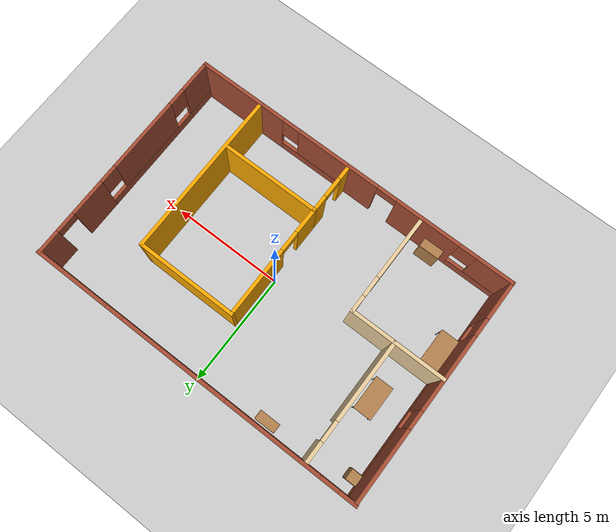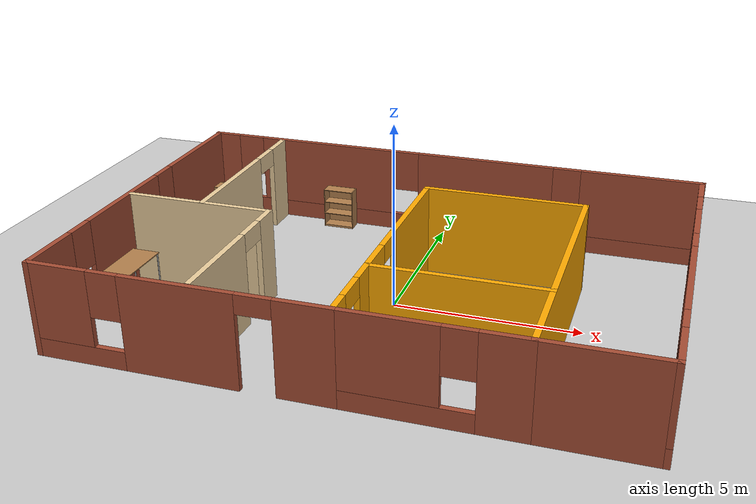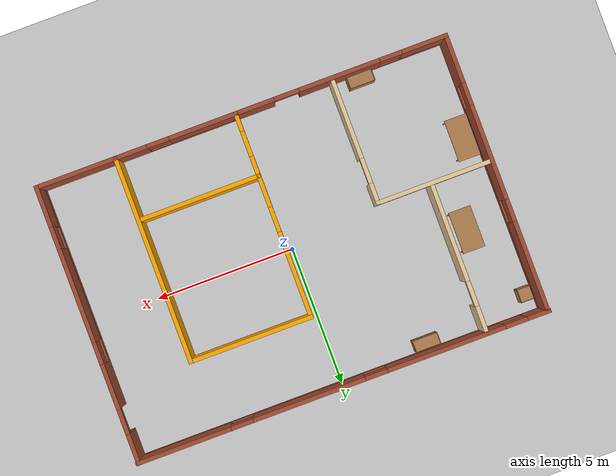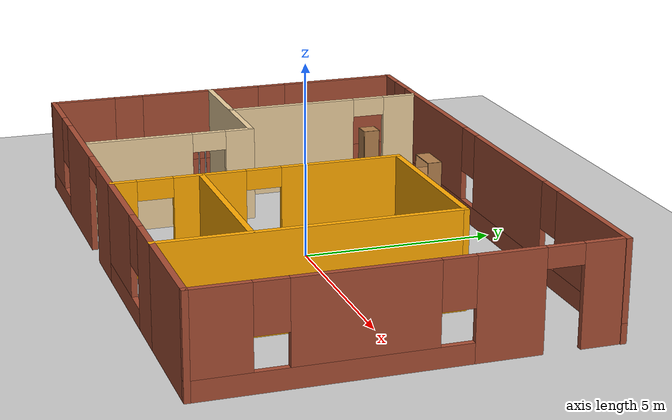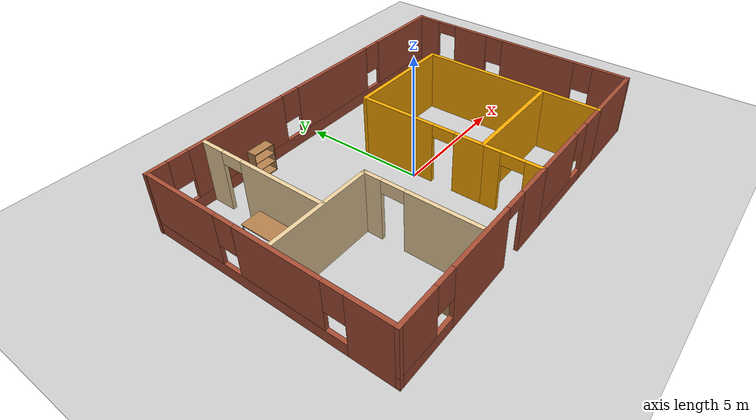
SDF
<sdf version="1.6">
 <world name="default">
  <model name="ground_plane">
   <static>1</static>
   <link name="ground_link">
    <collision name="collision">
     <geometry><plane><normal>0 0 1</normal><size>100 100</size></plane></geometry>
     <surface><friction><ode><mu>100</mu><mu2>50</mu2></ode></friction></surface>
    </collision>
    <visual name="visual">
     <cast_shadows>0</cast_shadows>
     <geometry><plane><normal>0 0 1</normal><size>100 100</size></plane></geometry>
     <material>
      <script><uri>file://media/materials/scripts/gazebo.material</uri><name>Gazebo/Grey</name></script>
     </material>
    </visual>
   </link>
  </model>
  <model name="Building">
   <link name="Wall_0">
    <pose>0 4.98061 0 0 -0 0</pose>
    <visual name="Wall_0_Visual_0">
     <pose>-7.08254 0 1.25 0 -0 0</pose>
     <geometry><box><size>0.834931 0.15 2.5</size></box></geometry>
     <material>
      <script><uri>file://media/materials/scripts/gazebo.material</uri><name>Gazebo/Bricks</name></script>
      <ambient>1 1 1 1</ambient>
     </material>
     <meta><layer>0</layer></meta>
    </visual>
    <collision name="Wall_0_Collision_0">
     <geometry><box><size>0.834931 0.15 2.5</size></box></geometry>
     <pose>-7.08254 0 1.25 0 -0 0</pose>
    </collision>
    <visual name="Wall_0_Visual_1">
     <pose>0.417465 0 0.25 0 -0 0</pose>
     <geometry><box><size>14.1651 0.15 0.5</size></box></geometry>
     <material>
      <script><uri>file://media/materials/scripts/gazebo.material</uri><name>Gazebo/Bricks</name></script>
      <ambient>1 1 1 1</ambient>
     </material>
     <meta><layer>0</layer></meta>
    </visual>
    <collision name="Wall_0_Collision_1">
     <geometry><box><size>14.1651 0.15 0.5</size></box></geometry>
     <pose>0.417465 0 0.25 0 -0 0</pose>
    </collision>
    <visual name="Wall_0_Visual_2">
     <pose>-3.73227 0 1.5 0 -0 0</pose>
     <geometry><box><size>4.2656 0.15 2</size></box></geometry>
     <material>
      <script><uri>file://media/materials/scripts/gazebo.material</uri><name>Gazebo/Bricks</name></script>
      <ambient>1 1 1 1</ambient>
     </material>
     <meta><layer>0</layer></meta>
    </visual>
    <collision name="Wall_0_Collision_2">
     <geometry><box><size>4.2656 0.15 2</size></box></geometry>
     <pose>-3.73227 0 1.5 0 -0 0</pose>
    </collision>
    <visual name="Wall_0_Visual_3">
     <pose>1.22925 0 1.5 0 -0 0</pose>
     <geometry><box><size>4.05743 0.15 2</size></box></geometry>
     <material>
      <script><uri>file://media/materials/scripts/gazebo.material</uri><name>Gazebo/Bricks</name></script>
      <ambient>1 1 1 1</ambient>
     </material>
     <meta><layer>0</layer></meta>
    </visual>
    <collision name="Wall_0_Collision_3">
     <geometry><box><size>4.05743 0.15 2</size></box></geometry>
     <pose>1.22925 0 1.5 0 -0 0</pose>
    </collision>
    <visual name="Wall_0_Visual_4">
     <pose>5.77898 0 1.5 0 -0 0</pose>
     <geometry><box><size>3.44204 0.15 2</size></box></geometry>
     <material>
      <script><uri>file://media/materials/scripts/gazebo.material</uri><name>Gazebo/Bricks</name></script>
      <ambient>1 1 1 1</ambient>
     </material>
     <meta><layer>0</layer></meta>
    </visual>
    <collision name="Wall_0_Collision_4">
     <geometry><box><size>3.44204 0.15 2</size></box></geometry>
     <pose>5.77898 0 1.5 0 -0 0</pose>
    </collision>
    <visual name="Wall_0_Visual_5">
     <pose>-6.26507 0 1.9 0 -0 0</pose>
     <geometry><box><size>0.8 0.15 1.2</size></box></geometry>
     <material>
      <script><uri>file://media/materials/scripts/gazebo.material</uri><name>Gazebo/Bricks</name></script>
      <ambient>1 1 1 1</ambient>
     </material>
     <meta><layer>0</layer></meta>
    </visual>
    <collision name="Wall_0_Collision_5">
     <geometry><box><size>0.8 0.15 1.2</size></box></geometry>
     <pose>-6.26507 0 1.9 0 -0 0</pose>
    </collision>
    <visual name="Wall_0_Visual_6">
     <pose>-1.19947 0 1.9 0 -0 0</pose>
     <geometry><box><size>0.8 0.15 1.2</size></box></geometry>
     <material>
      <script><uri>file://media/materials/scripts/gazebo.material</uri><name>Gazebo/Bricks</name></script>
      <ambient>1 1 1 1</ambient>
     </material>
     <meta><layer>0</layer></meta>
    </visual>
    <collision name="Wall_0_Collision_6">
     <geometry><box><size>0.8 0.15 1.2</size></box></geometry>
     <pose>-1.19947 0 1.9 0 -0 0</pose>
    </collision>
    <visual name="Wall_0_Visual_7">
     <pose>3.65796 0 1.9 0 -0 0</pose>
     <geometry><box><size>0.8 0.15 1.2</size></box></geometry>
     <material>
      <script><uri>file://media/materials/scripts/gazebo.material</uri><name>Gazebo/Bricks</name></script>
      <ambient>1 1 1 1</ambient>
     </material>
     <meta><layer>0</layer></meta>
    </visual>
    <collision name="Wall_0_Collision_7">
     <geometry><box><size>0.8 0.15 1.2</size></box></geometry>
     <pose>3.65796 0 1.9 0 -0 0</pose>
    </collision>
   </link>
   <link name="Wall_11">
    <pose>2.37687 -4.98061 0 0 -0 3.14159</pose>
    <visual name="Wall_11_Visual_0">
     <pose>-1.64172 0 1.25 0 -0 0</pose>
     <geometry><box><size>1.21656 0.15 2.5</size></box></geometry>
     <material>
      <script><uri>file://media/materials/scripts/gazebo.material</uri><name>Gazebo/Bricks</name></script>
      <ambient>1 1 1 1</ambient>
     </material>
     <meta><layer>0</layer></meta>
    </visual>
    <collision name="Wall_11_Collision_0">
     <geometry><box><size>1.21656 0.15 2.5</size></box></geometry>
     <pose>-1.64172 0 1.25 0 -0 0</pose>
    </collision>
    <visual name="Wall_11_Visual_1">
     <pose>0.608283 0 0.25 0 -0 0</pose>
     <geometry><box><size>3.28343 0.15 0.5</size></box></geometry>
     <material>
      <script><uri>file://media/materials/scripts/gazebo.material</uri><name>Gazebo/Bricks</name></script>
      <ambient>1 1 1 1</ambient>
     </material>
     <meta><layer>0</layer></meta>
    </visual>
    <collision name="Wall_11_Collision_1">
     <geometry><box><size>3.28343 0.15 0.5</size></box></geometry>
     <pose>0.608283 0 0.25 0 -0 0</pose>
    </collision>
    <visual name="Wall_11_Visual_2">
     <pose>1.00828 0 1.5 0 -0 0</pose>
     <geometry><box><size>2.48344 0.15 2</size></box></geometry>
     <material>
      <script><uri>file://media/materials/scripts/gazebo.material</uri><name>Gazebo/Bricks</name></script>
      <ambient>1 1 1 1</ambient>
     </material>
     <meta><layer>0</layer></meta>
    </visual>
    <collision name="Wall_11_Collision_2">
     <geometry><box><size>2.48344 0.15 2</size></box></geometry>
     <pose>1.00828 0 1.5 0 -0 0</pose>
    </collision>
    <visual name="Wall_11_Visual_3">
     <pose>-0.633435 0 1.9 0 -0 0</pose>
     <geometry><box><size>0.8 0.15 1.2</size></box></geometry>
     <material>
      <script><uri>file://media/materials/scripts/gazebo.material</uri><name>Gazebo/Bricks</name></script>
      <ambient>1 1 1 1</ambient>
     </material>
     <meta><layer>0</layer></meta>
    </visual>
    <collision name="Wall_11_Collision_3">
     <geometry><box><size>0.8 0.15 1.2</size></box></geometry>
     <pose>-0.633435 0 1.9 0 -0 0</pose>
    </collision>
   </link>
   <link name="Wall_12">
    <pose>0.20187 -3.85561 0 0 -0 1.5708</pose>
    <visual name="Wall_12_Visual_0">
     <pose>-0.842266 0 1.25 0 -0 0</pose>
     <geometry><box><size>0.715469 0.15 2.5</size></box></geometry>
     <material>
      <script><uri>file://media/materials/scripts/gazebo.material</uri><name>Gazebo/Grey</name></script>
      <ambient>1 0.666667 0 1</ambient>
     </material>
     <meta><layer>0</layer></meta>
    </visual>
    <collision name="Wall_12_Collision_0">
     <geometry><box><size>0.715469 0.15 2.5</size></box></geometry>
     <pose>-0.842266 0 1.25 0 -0 0</pose>
    </collision>
    <visual name="Wall_12_Visual_1">
     <pose>0.807734 0 1.25 0 -0 0</pose>
     <geometry><box><size>0.784531 0.15 2.5</size></box></geometry>
     <material>
      <script><uri>file://media/materials/scripts/gazebo.material</uri><name>Gazebo/Grey</name></script>
      <ambient>1 0.666667 0 1</ambient>
     </material>
     <meta><layer>0</layer></meta>
    </visual>
    <collision name="Wall_12_Collision_1">
     <geometry><box><size>0.784531 0.15 2.5</size></box></geometry>
     <pose>0.807734 0 1.25 0 -0 0</pose>
    </collision>
    <visual name="Wall_12_Visual_2">
     <pose>-0.034531 0 2.25 0 -0 0</pose>
     <geometry><box><size>0.9 0.15 0.5</size></box></geometry>
     <material>
      <script><uri>file://media/materials/scripts/gazebo.material</uri><name>Gazebo/Grey</name></script>
      <ambient>1 0.666667 0 1</ambient>
     </material>
     <meta><layer>0</layer></meta>
    </visual>
    <collision name="Wall_12_Collision_2">
     <geometry><box><size>0.9 0.15 0.5</size></box></geometry>
     <pose>-0.034531 0 2.25 0 -0 0</pose>
    </collision>
   </link>
   <link name="Wall_14">
    <pose>-3.59813 -4.98061 0 0 -0 3.14159</pose>
    <visual name="Wall_14_Visual_0">
     <pose>-3.14209 0 1.25 0 -0 0</pose>
     <geometry><box><size>1.46582 0.15 2.5</size></box></geometry>
     <material>
      <script><uri>file://media/materials/scripts/gazebo.material</uri><name>Gazebo/Bricks</name></script>
      <ambient>1 1 1 1</ambient>
     </material>
     <meta><layer>0</layer></meta>
    </visual>
    <collision name="Wall_14_Collision_0">
     <geometry><box><size>1.46582 0.15 2.5</size></box></geometry>
     <pose>-3.14209 0 1.25 0 -0 0</pose>
    </collision>
    <visual name="Wall_14_Visual_1">
     <pose>-0.049038 0 1.25 0 -0 0</pose>
     <geometry><box><size>2.92029 0.15 2.5</size></box></geometry>
     <material>
      <script><uri>file://media/materials/scripts/gazebo.material</uri><name>Gazebo/Bricks</name></script>
      <ambient>1 1 1 1</ambient>
     </material>
     <meta><layer>0</layer></meta>
    </visual>
    <collision name="Wall_14_Collision_1">
     <geometry><box><size>2.92029 0.15 2.5</size></box></geometry>
     <pose>-0.049038 0 1.25 0 -0 0</pose>
    </collision>
    <visual name="Wall_14_Visual_2">
     <pose>2.64305 0 0.25 0 -0 0</pose>
     <geometry><box><size>2.46389 0.15 0.5</size></box></geometry>
     <material>
      <script><uri>file://media/materials/scripts/gazebo.material</uri><name>Gazebo/Bricks</name></script>
      <ambient>1 1 1 1</ambient>
     </material>
     <meta><layer>0</layer></meta>
    </visual>
    <collision name="Wall_14_Collision_2">
     <geometry><box><size>2.46389 0.15 0.5</size></box></geometry>
     <pose>2.64305 0 0.25 0 -0 0</pose>
    </collision>
    <visual name="Wall_14_Visual_3">
     <pose>3.04305 0 1.5 0 -0 0</pose>
     <geometry><box><size>1.66389 0.15 2</size></box></geometry>
     <material>
      <script><uri>file://media/materials/scripts/gazebo.material</uri><name>Gazebo/Bricks</name></script>
      <ambient>1 1 1 1</ambient>
     </material>
     <meta><layer>0</layer></meta>
    </visual>
    <collision name="Wall_14_Collision_3">
     <geometry><box><size>1.66389 0.15 2</size></box></geometry>
     <pose>3.04305 0 1.5 0 -0 0</pose>
    </collision>
    <visual name="Wall_14_Visual_4">
     <pose>1.81111 0 1.9 0 -0 0</pose>
     <geometry><box><size>0.8 0.15 1.2</size></box></geometry>
     <material>
      <script><uri>file://media/materials/scripts/gazebo.material</uri><name>Gazebo/Bricks</name></script>
      <ambient>1 1 1 1</ambient>
     </material>
     <meta><layer>0</layer></meta>
    </visual>
    <collision name="Wall_14_Collision_4">
     <geometry><box><size>0.8 0.15 1.2</size></box></geometry>
     <pose>1.81111 0 1.9 0 -0 0</pose>
    </collision>
    <visual name="Wall_14_Visual_5">
     <pose>-1.95918 0 2.25 0 -0 0</pose>
     <geometry><box><size>0.9 0.15 0.5</size></box></geometry>
     <material>
      <script><uri>file://media/materials/scripts/gazebo.material</uri><name>Gazebo/Bricks</name></script>
      <ambient>1 1 1 1</ambient>
     </material>
     <meta><layer>0</layer></meta>
    </visual>
    <collision name="Wall_14_Collision_5">
     <geometry><box><size>0.9 0.15 0.5</size></box></geometry>
     <pose>-1.95918 0 2.25 0 -0 0</pose>
    </collision>
   </link>
   <link name="Wall_15">
    <pose>-7.39813 -0.055609 0 0 -0 1.5708</pose>
    <visual name="Wall_15_Visual_0">
     <pose>-4.10839 0 1.25 0 -0 0</pose>
     <geometry><box><size>1.78322 0.15 2.5</size></box></geometry>
     <material>
      <script><uri>file://media/materials/scripts/gazebo.material</uri><name>Gazebo/Bricks</name></script>
      <ambient>1 1 1 1</ambient>
     </material>
     <meta><layer>0</layer></meta>
    </visual>
    <collision name="Wall_15_Collision_0">
     <geometry><box><size>1.78322 0.15 2.5</size></box></geometry>
     <pose>-4.10839 0 1.25 0 -0 0</pose>
    </collision>
    <visual name="Wall_15_Visual_1">
     <pose>0.891608 0 0.25 0 -0 0</pose>
     <geometry><box><size>8.21678 0.15 0.5</size></box></geometry>
     <material>
      <script><uri>file://media/materials/scripts/gazebo.material</uri><name>Gazebo/Bricks</name></script>
      <ambient>1 1 1 1</ambient>
     </material>
     <meta><layer>0</layer></meta>
    </visual>
    <collision name="Wall_15_Collision_1">
     <geometry><box><size>8.21678 0.15 0.5</size></box></geometry>
     <pose>0.891608 0 0.25 0 -0 0</pose>
    </collision>
    <visual name="Wall_15_Visual_2">
     <pose>-0.711899 0 1.5 0 -0 0</pose>
     <geometry><box><size>3.40977 0.15 2</size></box></geometry>
     <material>
      <script><uri>file://media/materials/scripts/gazebo.material</uri><name>Gazebo/Bricks</name></script>
      <ambient>1 1 1 1</ambient>
     </material>
     <meta><layer>0</layer></meta>
    </visual>
    <collision name="Wall_15_Collision_2">
     <geometry><box><size>3.40977 0.15 2</size></box></geometry>
     <pose>-0.711899 0 1.5 0 -0 0</pose>
    </collision>
    <visual name="Wall_15_Visual_3">
     <pose>3.39649 0 1.5 0 -0 0</pose>
     <geometry><box><size>3.20701 0.15 2</size></box></geometry>
     <material>
      <script><uri>file://media/materials/scripts/gazebo.material</uri><name>Gazebo/Bricks</name></script>
      <ambient>1 1 1 1</ambient>
     </material>
     <meta><layer>0</layer></meta>
    </visual>
    <collision name="Wall_15_Collision_3">
     <geometry><box><size>3.20701 0.15 2</size></box></geometry>
     <pose>3.39649 0 1.5 0 -0 0</pose>
    </collision>
    <visual name="Wall_15_Visual_4">
     <pose>-2.81678 0 1.9 0 -0 0</pose>
     <geometry><box><size>0.8 0.15 1.2</size></box></geometry>
     <material>
      <script><uri>file://media/materials/scripts/gazebo.material</uri><name>Gazebo/Bricks</name></script>
      <ambient>1 1 1 1</ambient>
     </material>
     <meta><layer>0</layer></meta>
    </visual>
    <collision name="Wall_15_Collision_4">
     <geometry><box><size>0.8 0.15 1.2</size></box></geometry>
     <pose>-2.81678 0 1.9 0 -0 0</pose>
    </collision>
    <visual name="Wall_15_Visual_5">
     <pose>1.39299 0 1.9 0 -0 0</pose>
     <geometry><box><size>0.8 0.15 1.2</size></box></geometry>
     <material>
      <script><uri>file://media/materials/scripts/gazebo.material</uri><name>Gazebo/Bricks</name></script>
      <ambient>1 1 1 1</ambient>
     </material>
     <meta><layer>0</layer></meta>
    </visual>
    <collision name="Wall_15_Collision_5">
     <geometry><box><size>0.8 0.15 1.2</size></box></geometry>
     <pose>1.39299 0 1.9 0 -0 0</pose>
    </collision>
   </link>
   <link name="Wall_17">
    <collision name="Wall_17_Collision">
     <geometry><box><size>4.25 0.15 2.5</size></box></geometry>
     <pose>0 0 1.25 0 -0 0</pose>
    </collision>
    <visual name="Wall_17_Visual">
     <pose>0 0 1.25 0 -0 0</pose>
     <geometry><box><size>4.25 0.15 2.5</size></box></geometry>
     <material>
      <script><uri>file://media/materials/scripts/gazebo.material</uri><name>Gazebo/Grey</name></script>
      <ambient>0.921569 0.807843 0.615686 1</ambient>
     </material>
     <meta><layer>0</layer></meta>
    </visual>
    <pose>-5.32534 -0.46681 0 0 -0 0</pose>
   </link>
   <link name="Wall_18">
    <pose>-3.27534 -2.64181 0 0 0 -1.5708</pose>
    <visual name="Wall_18_Visual_0">
     <pose>-1.85923 0 1.25 0 -0 0</pose>
     <geometry><box><size>0.78153 0.15 2.5</size></box></geometry>
     <material>
      <script><uri>file://media/materials/scripts/gazebo.material</uri><name>Gazebo/Grey</name></script>
      <ambient>0.921569 0.807843 0.615686 1</ambient>
     </material>
     <meta><layer>0</layer></meta>
    </visual>
    <collision name="Wall_18_Collision_0">
     <geometry><box><size>0.78153 0.15 2.5</size></box></geometry>
     <pose>-1.85923 0 1.25 0 -0 0</pose>
    </collision>
    <visual name="Wall_18_Visual_1">
     <pose>0.840765 0 1.25 0 -0 0</pose>
     <geometry><box><size>2.81847 0.15 2.5</size></box></geometry>
     <material>
      <script><uri>file://media/materials/scripts/gazebo.material</uri><name>Gazebo/Grey</name></script>
      <ambient>0.921569 0.807843 0.615686 1</ambient>
     </material>
     <meta><layer>0</layer></meta>
    </visual>
    <collision name="Wall_18_Collision_1">
     <geometry><box><size>2.81847 0.15 2.5</size></box></geometry>
     <pose>0.840765 0 1.25 0 -0 0</pose>
    </collision>
    <visual name="Wall_18_Visual_2">
     <pose>-1.01847 0 2.25 0 -0 0</pose>
     <geometry><box><size>0.9 0.15 0.5</size></box></geometry>
     <material>
      <script><uri>file://media/materials/scripts/gazebo.material</uri><name>Gazebo/Grey</name></script>
      <ambient>0.921569 0.807843 0.615686 1</ambient>
     </material>
     <meta><layer>0</layer></meta>
    </visual>
    <collision name="Wall_18_Collision_2">
     <geometry><box><size>0.9 0.15 0.5</size></box></geometry>
     <pose>-1.01847 0 2.25 0 -0 0</pose>
    </collision>
   </link>
   <link name="Wall_20">
    <pose>-5.20106 2.23132 0 0 -0 1.5708</pose>
    <visual name="Wall_20_Visual_0">
     <pose>-0.948268 0 1.25 0 -0 0</pose>
     <geometry><box><size>3.60346 0.15 2.5</size></box></geometry>
     <material>
      <script><uri>file://media/materials/scripts/gazebo.material</uri><name>Gazebo/Grey</name></script>
      <ambient>0.921569 0.807843 0.615686 1</ambient>
     </material>
     <meta><layer>0</layer></meta>
    </visual>
    <collision name="Wall_20_Collision_0">
     <geometry><box><size>3.60346 0.15 2.5</size></box></geometry>
     <pose>-0.948268 0 1.25 0 -0 0</pose>
    </collision>
    <visual name="Wall_20_Visual_1">
     <pose>2.25173 0 1.25 0 -0 0</pose>
     <geometry><box><size>0.996535 0.15 2.5</size></box></geometry>
     <material>
      <script><uri>file://media/materials/scripts/gazebo.material</uri><name>Gazebo/Grey</name></script>
      <ambient>0.921569 0.807843 0.615686 1</ambient>
     </material>
     <meta><layer>0</layer></meta>
    </visual>
    <collision name="Wall_20_Collision_1">
     <geometry><box><size>0.996535 0.15 2.5</size></box></geometry>
     <pose>2.25173 0 1.25 0 -0 0</pose>
    </collision>
    <visual name="Wall_20_Visual_2">
     <pose>1.30347 0 2.25 0 -0 0</pose>
     <geometry><box><size>0.9 0.15 0.5</size></box></geometry>
     <material>
      <script><uri>file://media/materials/scripts/gazebo.material</uri><name>Gazebo/Grey</name></script>
      <ambient>0.921569 0.807843 0.615686 1</ambient>
     </material>
     <meta><layer>0</layer></meta>
    </visual>
    <collision name="Wall_20_Collision_2">
     <geometry><box><size>0.9 0.15 0.5</size></box></geometry>
     <pose>1.30347 0 2.25 0 -0 0</pose>
    </collision>
   </link>
   <link name="Wall_3">
    <pose>7.40187 0 0 0 0 -1.5708</pose>
    <visual name="Wall_3_Visual_0">
     <pose>-4.49731 0 1.25 0 -0 0</pose>
     <geometry><box><size>1.11757 0.15 2.5</size></box></geometry>
     <material>
      <script><uri>file://media/materials/scripts/gazebo.material</uri><name>Gazebo/Bricks</name></script>
      <ambient>1 1 1 1</ambient>
     </material>
     <meta><layer>0</layer></meta>
    </visual>
    <collision name="Wall_3_Collision_0">
     <geometry><box><size>1.11757 0.15 2.5</size></box></geometry>
     <pose>-4.49731 0 1.25 0 -0 0</pose>
    </collision>
    <visual name="Wall_3_Visual_1">
     <pose>-2.22604 0 1.25 0 -0 0</pose>
     <geometry><box><size>1.62498 0.15 2.5</size></box></geometry>
     <material>
      <script><uri>file://media/materials/scripts/gazebo.material</uri><name>Gazebo/Bricks</name></script>
      <ambient>1 1 1 1</ambient>
     </material>
     <meta><layer>0</layer></meta>
    </visual>
    <collision name="Wall_3_Collision_1">
     <geometry><box><size>1.62498 0.15 2.5</size></box></geometry>
     <pose>-2.22604 0 1.25 0 -0 0</pose>
    </collision>
    <visual name="Wall_3_Visual_2">
     <pose>1.82127 0 0.25 0 -0 0</pose>
     <geometry><box><size>6.46964 0.15 0.5</size></box></geometry>
     <material>
      <script><uri>file://media/materials/scripts/gazebo.material</uri><name>Gazebo/Bricks</name></script>
      <ambient>1 1 1 1</ambient>
     </material>
     <meta><layer>0</layer></meta>
    </visual>
    <collision name="Wall_3_Collision_2">
     <geometry><box><size>6.46964 0.15 0.5</size></box></geometry>
     <pose>1.82127 0 0.25 0 -0 0</pose>
    </collision>
    <visual name="Wall_3_Visual_3">
     <pose>1.06821 0 1.5 0 -0 0</pose>
     <geometry><box><size>3.36351 0.15 2</size></box></geometry>
     <material>
      <script><uri>file://media/materials/scripts/gazebo.material</uri><name>Gazebo/Bricks</name></script>
      <ambient>1 1 1 1</ambient>
     </material>
     <meta><layer>0</layer></meta>
    </visual>
    <collision name="Wall_3_Collision_3">
     <geometry><box><size>3.36351 0.15 2</size></box></geometry>
     <pose>1.06821 0 1.5 0 -0 0</pose>
    </collision>
    <visual name="Wall_3_Visual_4">
     <pose>4.30303 0 1.5 0 -0 0</pose>
     <geometry><box><size>1.50613 0.15 2</size></box></geometry>
     <material>
      <script><uri>file://media/materials/scripts/gazebo.material</uri><name>Gazebo/Bricks</name></script>
      <ambient>1 1 1 1</ambient>
     </material>
     <meta><layer>0</layer></meta>
    </visual>
    <collision name="Wall_3_Collision_4">
     <geometry><box><size>1.50613 0.15 2</size></box></geometry>
     <pose>4.30303 0 1.5 0 -0 0</pose>
    </collision>
    <visual name="Wall_3_Visual_5">
     <pose>-1.01355 0 1.9 0 -0 0</pose>
     <geometry><box><size>0.8 0.15 1.2</size></box></geometry>
     <material>
      <script><uri>file://media/materials/scripts/gazebo.material</uri><name>Gazebo/Bricks</name></script>
      <ambient>1 1 1 1</ambient>
     </material>
     <meta><layer>0</layer></meta>
    </visual>
    <collision name="Wall_3_Collision_5">
     <geometry><box><size>0.8 0.15 1.2</size></box></geometry>
     <pose>-1.01355 0 1.9 0 -0 0</pose>
    </collision>
    <visual name="Wall_3_Visual_6">
     <pose>3.14996 0 1.9 0 -0 0</pose>
     <geometry><box><size>0.8 0.15 1.2</size></box></geometry>
     <material>
      <script><uri>file://media/materials/scripts/gazebo.material</uri><name>Gazebo/Bricks</name></script>
      <ambient>1 1 1 1</ambient>
     </material>
     <meta><layer>0</layer></meta>
    </visual>
    <collision name="Wall_3_Collision_6">
     <geometry><box><size>0.8 0.15 1.2</size></box></geometry>
     <pose>3.14996 0 1.9 0 -0 0</pose>
    </collision>
    <visual name="Wall_3_Visual_7">
     <pose>-3.48853 0 2.25 0 -0 0</pose>
     <geometry><box><size>0.9 0.15 0.5</size></box></geometry>
     <material>
      <script><uri>file://media/materials/scripts/gazebo.material</uri><name>Gazebo/Bricks</name></script>
      <ambient>1 1 1 1</ambient>
     </material>
     <meta><layer>0</layer></meta>
    </visual>
    <collision name="Wall_3_Collision_7">
     <geometry><box><size>0.9 0.15 0.5</size></box></geometry>
     <pose>-3.48853 0 2.25 0 -0 0</pose>
    </collision>
   </link>
   <link name="Wall_4">
    <collision name="Wall_4_Collision">
     <geometry><box><size>3 0.15 2.5</size></box></geometry>
     <pose>0 0 1.25 0 -0 0</pose>
    </collision>
    <visual name="Wall_4_Visual">
     <pose>0 0 1.25 0 -0 0</pose>
     <geometry><box><size>3 0.15 2.5</size></box></geometry>
     <material>
      <script><uri>file://media/materials/scripts/gazebo.material</uri><name>Gazebo/Bricks</name></script>
      <ambient>1 1 1 1</ambient>
     </material>
     <meta><layer>0</layer></meta>
    </visual>
    <pose>5.97687 -4.98061 0 0 -0 3.14159</pose>
   </link>
   <link name="Wall_6">
    <collision name="Wall_6_Collision">
     <geometry><box><size>7.5 0.15 2.5</size></box></geometry>
     <pose>0 0 1.25 0 -0 0</pose>
    </collision>
    <visual name="Wall_6_Visual">
     <pose>0 0 1.25 0 -0 0</pose>
     <geometry><box><size>7.5 0.15 2.5</size></box></geometry>
     <material>
      <script><uri>file://media/materials/scripts/gazebo.material</uri><name>Gazebo/Grey</name></script>
      <ambient>1 0.666667 0 1</ambient>
     </material>
     <meta><layer>0</layer></meta>
    </visual>
    <pose>4.55187 -1.30561 0 0 -0 1.5708</pose>
   </link>
   <link name="Wall_7">
    <collision name="Wall_7_Collision">
     <geometry><box><size>4.5 0.15 2.5</size></box></geometry>
     <pose>0 0 1.25 0 -0 0</pose>
    </collision>
    <visual name="Wall_7_Visual">
     <pose>0 0 1.25 0 -0 0</pose>
     <geometry><box><size>4.5 0.15 2.5</size></box></geometry>
     <material>
      <script><uri>file://media/materials/scripts/gazebo.material</uri><name>Gazebo/Grey</name></script>
      <ambient>1 0.666667 0 1</ambient>
     </material>
     <meta><layer>0</layer></meta>
    </visual>
    <pose>2.37687 2.36939 0 0 -0 3.14159</pose>
   </link>
   <link name="Wall_8">
    <pose>0.20187 -0.180609 0 0 0 -1.5708</pose>
    <visual name="Wall_8_Visual_0">
     <pose>-1.04744 0 1.25 0 -0 0</pose>
     <geometry><box><size>3.15512 0.15 2.5</size></box></geometry>
     <material>
      <script><uri>file://media/materials/scripts/gazebo.material</uri><name>Gazebo/Grey</name></script>
      <ambient>1 0.666667 0 1</ambient>
     </material>
     <meta><layer>0</layer></meta>
    </visual>
    <collision name="Wall_8_Collision_0">
     <geometry><box><size>3.15512 0.15 2.5</size></box></geometry>
     <pose>-1.04744 0 1.25 0 -0 0</pose>
    </collision>
    <visual name="Wall_8_Visual_1">
     <pose>2.02756 0 1.25 0 -0 0</pose>
     <geometry><box><size>1.19488 0.15 2.5</size></box></geometry>
     <material>
      <script><uri>file://media/materials/scripts/gazebo.material</uri><name>Gazebo/Grey</name></script>
      <ambient>1 0.666667 0 1</ambient>
     </material>
     <meta><layer>0</layer></meta>
    </visual>
    <collision name="Wall_8_Collision_1">
     <geometry><box><size>1.19488 0.15 2.5</size></box></geometry>
     <pose>2.02756 0 1.25 0 -0 0</pose>
    </collision>
    <visual name="Wall_8_Visual_2">
     <pose>0.980119 0 2.25 0 -0 0</pose>
     <geometry><box><size>0.9 0.15 0.5</size></box></geometry>
     <material>
      <script><uri>file://media/materials/scripts/gazebo.material</uri><name>Gazebo/Grey</name></script>
      <ambient>1 0.666667 0 1</ambient>
     </material>
     <meta><layer>0</layer></meta>
    </visual>
    <collision name="Wall_8_Collision_2">
     <geometry><box><size>0.9 0.15 0.5</size></box></geometry>
     <pose>0.980119 0 2.25 0 -0 0</pose>
    </collision>
   </link>
   <link name="Wall_9">
    <collision name="Wall_9_Collision">
     <geometry><box><size>4.5 0.15 2.5</size></box></geometry>
     <pose>0 0 1.25 0 -0 0</pose>
    </collision>
    <visual name="Wall_9_Visual">
     <pose>0 0 1.25 0 -0 0</pose>
     <geometry><box><size>4.5 0.15 2.5</size></box></geometry>
     <material>
      <script><uri>file://media/materials/scripts/gazebo.material</uri><name>Gazebo/Grey</name></script>
      <ambient>1 0.666667 0 1</ambient>
     </material>
     <meta><layer>0</layer></meta>
    </visual>
    <pose>2.37687 -2.73061 0 0 -0 0</pose>
   </link>
   <static>1</static>
  </model>
  <model name="bookshelf">
   <static>1</static>
   <link name="bookself0_link">
    <inertial><mass>1</mass></inertial>
    <collision name="back">
     <pose>0 0.005 0.6 0 -0 0</pose>
     <geometry><box><size>0.9 0.01 1.2</size></box></geometry>
    </collision>
    <visual name="visual1">
     <pose>0 0.005 0.6 0 -0 0</pose>
     <geometry><box><size>0.9 0.01 1.2</size></box></geometry>
     <material>
      <script><uri>file://media/materials/scripts/gazebo.material</uri><name>Gazebo/Wood</name></script>
     </material>
    </visual>
    <collision name="left_side">
     <pose>0.45 -0.195 0.6 0 -0 0</pose>
     <geometry><box><size>0.02 0.4 1.2</size></box></geometry>
    </collision>
    <visual name="visual2">
     <pose>0.45 -0.195 0.6 0 -0 0</pose>
     <geometry><box><size>0.02 0.4 1.2</size></box></geometry>
     <material>
      <script><uri>file://media/materials/scripts/gazebo.material</uri><name>Gazebo/Wood</name></script>
     </material>
    </visual>
    <collision name="right_side">
     <pose>-0.45 -0.195 0.6 0 -0 0</pose>
     <geometry><box><size>0.02 0.4 1.2</size></box></geometry>
    </collision>
    <visual name="visual3">
     <pose>-0.45 -0.195 0.6 0 -0 0</pose>
     <geometry><box><size>0.02 0.4 1.2</size></box></geometry>
     <material>
      <script><uri>file://media/materials/scripts/gazebo.material</uri><name>Gazebo/Wood</name></script>
     </material>
    </visual>
    <collision name="bottom">
     <pose>0 -0.195 0.03 0 -0 0</pose>
     <geometry><box><size>0.88 0.4 0.06</size></box></geometry>
    </collision>
    <visual name="visual4">
     <pose>0 -0.195 0.03 0 -0 0</pose>
     <geometry><box><size>0.88 0.4 0.06</size></box></geometry>
     <material>
      <script><uri>file://media/materials/scripts/gazebo.material</uri><name>Gazebo/Wood</name></script>
     </material>
    </visual>
    <collision name="top">
     <pose>0 -0.195 1.19 0 -0 0</pose>
     <geometry><box><size>0.88 0.4 0.02</size></box></geometry>
    </collision>
    <visual name="visual5">
     <pose>0 -0.195 1.19 0 -0 0</pose>
     <geometry><box><size>0.88 0.4 0.02</size></box></geometry>
     <material>
      <script><uri>file://media/materials/scripts/gazebo.material</uri><name>Gazebo/Wood</name></script>
     </material>
    </visual>
    <collision name="low_shelf">
     <pose>0 -0.195 0.43 0 -0 0</pose>
     <geometry><box><size>0.88 0.4 0.02</size></box></geometry>
    </collision>
    <visual name="visual6">
     <pose>0 -0.195 0.43 0 -0 0</pose>
     <geometry><box><size>0.88 0.4 0.02</size></box></geometry>
     <material>
      <script><uri>file://media/materials/scripts/gazebo.material</uri><name>Gazebo/Wood</name></script>
     </material>
    </visual>
    <collision name="high_shelf">
     <pose>0 -0.195 0.8 0 -0 0</pose>
     <geometry><box><size>0.88 0.4 0.02</size></box></geometry>
    </collision>
    <visual name="visual7">
     <pose>0 -0.195 0.8 0 -0 0</pose>
     <geometry><box><size>0.88 0.4 0.02</size></box></geometry>
     <material>
      <script><uri>file://media/materials/scripts/gazebo.material</uri><name>Gazebo/Wood</name></script>
     </material>
    </visual>
   </link>
   <pose>-3.22394 4.81654 0 0 -0 0</pose>
  </model>
  <model name="table_0">
   <static>1</static>
   <link name="table00_link">
    <collision name="surface">
     <pose>0 0 1 0 -0 0</pose>
     <geometry><box><size>1.5 0.8 0.03</size></box></geometry>
     <surface><friction><ode><mu>0.6</mu><mu2>0.6</mu2></ode></friction></surface>
    </collision>
    <visual name="visual1">
     <pose>0 0 1 0 -0 0</pose>
     <geometry><box><size>1.5 0.8 0.03</size></box></geometry>
     <material>
      <script><uri>file://media/materials/scripts/gazebo.material</uri><name>Gazebo/Wood</name></script>
     </material>
    </visual>
    <collision name="front_left_leg">
     <pose>0.68 0.38 0.5 0 -0 0</pose>
     <geometry><cylinder><radius>0.02</radius><length>1</length></cylinder></geometry>
    </collision>
    <visual name="front_left_leg">
     <pose>0.68 0.38 0.5 0 -0 0</pose>
     <geometry><cylinder><radius>0.02</radius><length>1</length></cylinder></geometry>
     <material>
      <script><uri>file://media/materials/scripts/gazebo.material</uri><name>Gazebo/Grey</name></script>
     </material>
    </visual>
    <collision name="front_right_leg">
     <pose>0.68 -0.38 0.5 0 -0 0</pose>
     <geometry><cylinder><radius>0.02</radius><length>1</length></cylinder></geometry>
    </collision>
    <visual name="front_right_leg">
     <pose>0.68 -0.38 0.5 0 -0 0</pose>
     <geometry><cylinder><radius>0.02</radius><length>1</length></cylinder></geometry>
     <material>
      <script><uri>file://media/materials/scripts/gazebo.material</uri><name>Gazebo/Grey</name></script>
     </material>
    </visual>
    <collision name="back_right_leg">
     <pose>-0.68 -0.38 0.5 0 -0 0</pose>
     <geometry><cylinder><radius>0.02</radius><length>1</length></cylinder></geometry>
    </collision>
    <visual name="back_right_leg">
     <pose>-0.68 -0.38 0.5 0 -0 0</pose>
     <geometry><cylinder><radius>0.02</radius><length>1</length></cylinder></geometry>
     <material>
      <script><uri>file://media/materials/scripts/gazebo.material</uri><name>Gazebo/Grey</name></script>
     </material>
    </visual>
    <collision name="back_left_leg">
     <pose>-0.68 0.38 0.5 0 -0 0</pose>
     <geometry><cylinder><radius>0.02</radius><length>1</length></cylinder></geometry>
    </collision>
    <visual name="back_left_leg">
     <pose>-0.68 0.38 0.5 0 -0 0</pose>
     <geometry><cylinder><radius>0.02</radius><length>1</length></cylinder></geometry>
     <material>
      <script><uri>file://media/materials/scripts/gazebo.material</uri><name>Gazebo/Grey</name></script>
     </material>
    </visual>
   </link>
   <pose>-6.85191 -1.57147 0 0 -0 1.56556</pose>
  </model>
  <model name="table_2">
   <static>1</static>
   <link name="table_2_link">
    <collision name="surface">
     <pose>0 0 1 0 -0 0</pose>
     <geometry><box><size>1.5 0.8 0.03</size></box></geometry>
     <surface><friction><ode><mu>0.6</mu><mu2>0.6</mu2></ode></friction></surface>
    </collision>
    <visual name="visual1">
     <pose>0 0 1 0 -0 0</pose>
     <geometry><box><size>1.5 0.8 0.03</size></box></geometry>
     <material>
      <script><uri>file://media/materials/scripts/gazebo.material</uri><name>Gazebo/Wood</name></script>
     </material>
    </visual>
    <collision name="front_left_leg">
     <pose>0.68 0.38 0.5 0 -0 0</pose>
     <geometry><cylinder><radius>0.02</radius><length>1</length></cylinder></geometry>
    </collision>
    <visual name="front_left_leg">
     <pose>0.68 0.38 0.5 0 -0 0</pose>
     <geometry><cylinder><radius>0.02</radius><length>1</length></cylinder></geometry>
     <material>
      <script><uri>file://media/materials/scripts/gazebo.material</uri><name>Gazebo/Grey</name></script>
     </material>
    </visual>
    <collision name="front_right_leg">
     <pose>0.68 -0.38 0.5 0 -0 0</pose>
     <geometry><cylinder><radius>0.02</radius><length>1</length></cylinder></geometry>
    </collision>
    <visual name="front_right_leg">
     <pose>0.68 -0.38 0.5 0 -0 0</pose>
     <geometry><cylinder><radius>0.02</radius><length>1</length></cylinder></geometry>
     <material>
      <script><uri>file://media/materials/scripts/gazebo.material</uri><name>Gazebo/Grey</name></script>
     </material>
    </visual>
    <collision name="back_right_leg">
     <pose>-0.68 -0.38 0.5 0 -0 0</pose>
     <geometry><cylinder><radius>0.02</radius><length>1</length></cylinder></geometry>
    </collision>
    <visual name="back_right_leg">
     <pose>-0.68 -0.38 0.5 0 -0 0</pose>
     <geometry><cylinder><radius>0.02</radius><length>1</length></cylinder></geometry>
     <material>
      <script><uri>file://media/materials/scripts/gazebo.material</uri><name>Gazebo/Grey</name></script>
     </material>
    </visual>
    <collision name="back_left_leg">
     <pose>-0.68 0.38 0.5 0 -0 0</pose>
     <geometry><cylinder><radius>0.02</radius><length>1</length></cylinder></geometry>
    </collision>
    <visual name="back_left_leg">
     <pose>-0.68 0.38 0.5 0 -0 0</pose>
     <geometry><cylinder><radius>0.02</radius><length>1</length></cylinder></geometry>
     <material>
      <script><uri>file://media/materials/scripts/gazebo.material</uri><name>Gazebo/Grey</name></script>
     </material>
    </visual>
   </link>
   <pose>-5.8878 1.45999 0 0 -0 1.57272</pose>
  </model>
  <model name="cabinet_clone">
   <static>1</static>
   <link name="cabinet_bottom_plate">
    <inertial>
     <pose>0 0 -1 0 -0 0</pose>
     <inertia><ixx>2.05</ixx><ixy>0</ixy><ixz>0</ixz><iyy>2.05</iyy><iyz>0</iyz><izz>2.05</izz></inertia>
     <mass>25</mass>
    </inertial>
    <collision name="cabinet_bottom_plate_geom">
     <pose>0 0 0.01 0 -0 0</pose>
     <geometry><box><size>0.45 0.45 0.02</size></box></geometry>
    </collision>
    <visual name="cabinet_bottom_plate_geom_visual">
     <pose>0 0 0.01 0 -0 0</pose>
     <geometry><box><size>0.45 0.45 0.02</size></box></geometry>
     <material>
      <script><uri>file://media/materials/scripts/gazebo.material</uri><name>Gazebo/Wood</name></script>
     </material>
    </visual>
    <collision name="cabinet_bottom_plate_geom_cabinet_back_plate">
     <pose>0.235 0 0.51 0 -0 0</pose>
     <geometry><box><size>0.02 0.45 1.02</size></box></geometry>
    </collision>
    <visual name="cabinet_bottom_plate_geom_cabinet_back_plate_visual">
     <pose>0.235 0 0.51 0 -0 0</pose>
     <geometry><box><size>0.02 0.45 1.02</size></box></geometry>
     <material>
      <script><uri>file://media/materials/scripts/gazebo.material</uri><name>Gazebo/Wood</name></script>
     </material>
    </visual>
    <collision name="cabinet_bottom_plate_geom_cabinet_left_plate">
     <pose>0 0.235 0.51 0 -0 0</pose>
     <geometry><box><size>0.45 0.02 1.02</size></box></geometry>
    </collision>
    <visual name="cabinet_bottom_plate_geom_cabinet_left_plate_visual">
     <pose>0 0.235 0.51 0 -0 0</pose>
     <geometry><box><size>0.45 0.02 1.02</size></box></geometry>
     <material>
      <script><uri>file://media/materials/scripts/gazebo.material</uri><name>Gazebo/Wood</name></script>
     </material>
    </visual>
    <collision name="cabinet_bottom_plate_geom_cabinet_middle_plate">
     <pose>0 0 0.51 0 -0 0</pose>
     <geometry><box><size>0.45 0.45 0.02</size></box></geometry>
    </collision>
    <visual name="cabinet_bottom_plate_geom_cabinet_middle_plate_visual">
     <pose>0 0 0.51 0 -0 0</pose>
     <geometry><box><size>0.45 0.45 0.02</size></box></geometry>
     <material>
      <script><uri>file://media/materials/scripts/gazebo.material</uri><name>Gazebo/Wood</name></script>
     </material>
    </visual>
    <collision name="cabinet_bottom_plate_geom_cabinet_right_plate">
     <pose>0 -0.235 0.51 0 -0 0</pose>
     <geometry><box><size>0.45 0.02 1.02</size></box></geometry>
    </collision>
    <visual name="cabinet_bottom_plate_geom_cabinet_right_plate_visual">
     <pose>0 -0.235 0.51 0 -0 0</pose>
     <geometry><box><size>0.45 0.02 1.02</size></box></geometry>
     <material>
      <script><uri>file://media/materials/scripts/gazebo.material</uri><name>Gazebo/Wood</name></script>
     </material>
    </visual>
    <collision name="cabinet_bottom_plate_geom_cabinet_top_plate">
     <pose>0 0 1.01 0 -0 0</pose>
     <geometry><box><size>0.45 0.45 0.02</size></box></geometry>
    </collision>
    <visual name="cabinet_bottom_plate_geom_cabinet_top_plate_visual">
     <pose>0 0 1.01 0 -0 0</pose>
     <geometry><box><size>0.45 0.45 0.02</size></box></geometry>
     <material>
      <script><uri>file://media/materials/scripts/gazebo.material</uri><name>Gazebo/Wood</name></script>
     </material>
    </visual>
   </link>
   <pose>-7.01561 4.25391 0 0 -0 0</pose>
  </model>
  <model name="bookshelf_clone">
   <static>1</static>
   <link name="bookshelf_clone_link">
    <inertial><mass>1</mass></inertial>
    <collision name="back">
     <pose>0 0.005 0.6 0 -0 0</pose>
     <geometry><box><size>0.9 0.01 1.2</size></box></geometry>
    </collision>
    <visual name="visual1">
     <pose>0 0.005 0.6 0 -0 0</pose>
     <geometry><box><size>0.9 0.01 1.2</size></box></geometry>
     <material>
      <script><uri>file://media/materials/scripts/gazebo.material</uri><name>Gazebo/Wood</name></script>
     </material>
    </visual>
    <collision name="left_side">
     <pose>0.45 -0.195 0.6 0 -0 0</pose>
     <geometry><box><size>0.02 0.4 1.2</size></box></geometry>
    </collision>
    <visual name="visual2">
     <pose>0.45 -0.195 0.6 0 -0 0</pose>
     <geometry><box><size>0.02 0.4 1.2</size></box></geometry>
     <material>
      <script><uri>file://media/materials/scripts/gazebo.material</uri><name>Gazebo/Wood</name></script>
     </material>
    </visual>
    <collision name="right_side">
     <pose>-0.45 -0.195 0.6 0 -0 0</pose>
     <geometry><box><size>0.02 0.4 1.2</size></box></geometry>
    </collision>
    <visual name="visual3">
     <pose>-0.45 -0.195 0.6 0 -0 0</pose>
     <geometry><box><size>0.02 0.4 1.2</size></box></geometry>
     <material>
      <script><uri>file://media/materials/scripts/gazebo.material</uri><name>Gazebo/Wood</name></script>
     </material>
    </visual>
    <collision name="bottom">
     <pose>0 -0.195 0.03 0 -0 0</pose>
     <geometry><box><size>0.88 0.4 0.06</size></box></geometry>
    </collision>
    <visual name="visual4">
     <pose>0 -0.195 0.03 0 -0 0</pose>
     <geometry><box><size>0.88 0.4 0.06</size></box></geometry>
     <material>
      <script><uri>file://media/materials/scripts/gazebo.material</uri><name>Gazebo/Wood</name></script>
     </material>
    </visual>
    <collision name="top">
     <pose>0 -0.195 1.19 0 -0 0</pose>
     <geometry><box><size>0.88 0.4 0.02</size></box></geometry>
    </collision>
    <visual name="visual5">
     <pose>0 -0.195 1.19 0 -0 0</pose>
     <geometry><box><size>0.88 0.4 0.02</size></box></geometry>
     <material>
      <script><uri>file://media/materials/scripts/gazebo.material</uri><name>Gazebo/Wood</name></script>
     </material>
    </visual>
    <collision name="low_shelf">
     <pose>0 -0.195 0.43 0 -0 0</pose>
     <geometry><box><size>0.88 0.4 0.02</size></box></geometry>
    </collision>
    <visual name="visual6">
     <pose>0 -0.195 0.43 0 -0 0</pose>
     <geometry><box><size>0.88 0.4 0.02</size></box></geometry>
     <material>
      <script><uri>file://media/materials/scripts/gazebo.material</uri><name>Gazebo/Wood</name></script>
     </material>
    </visual>
    <collision name="high_shelf">
     <pose>0 -0.195 0.8 0 -0 0</pose>
     <geometry><box><size>0.88 0.4 0.02</size></box></geometry>
    </collision>
    <visual name="visual7">
     <pose>0 -0.195 0.8 0 -0 0</pose>
     <geometry><box><size>0.88 0.4 0.02</size></box></geometry>
     <material>
      <script><uri>file://media/materials/scripts/gazebo.material</uri><name>Gazebo/Wood</name></script>
     </material>
    </visual>
   </link>
   <pose>-4.25852 -4.49165 0 0 -0 0</pose>
  </model>
 </world>
</sdf>
